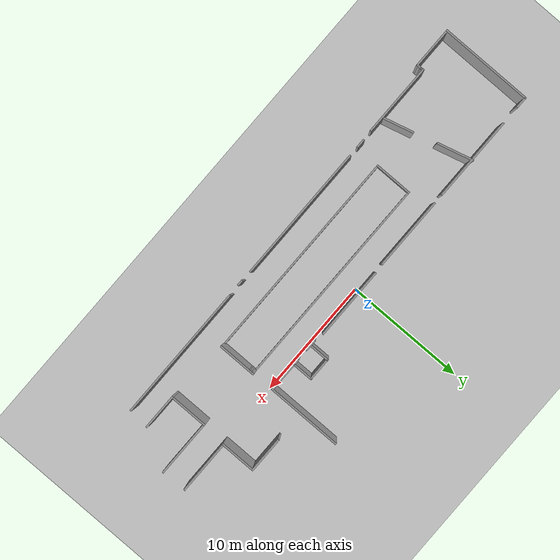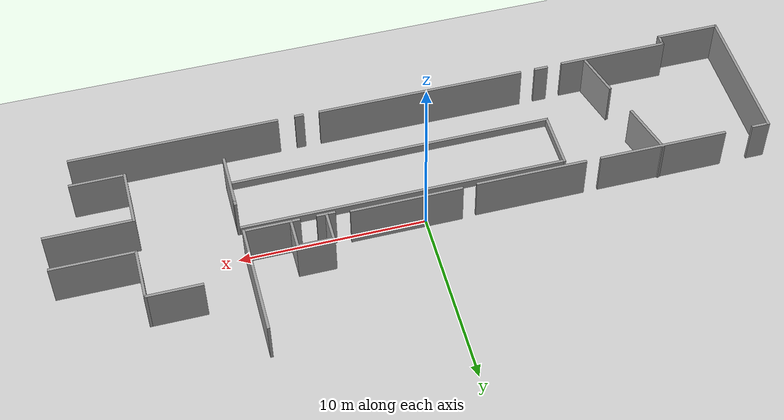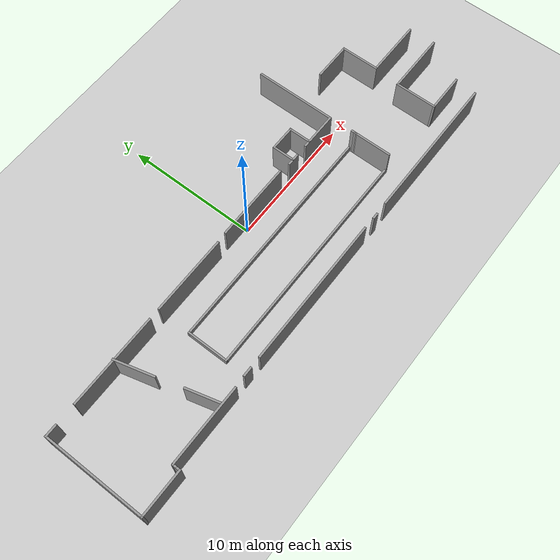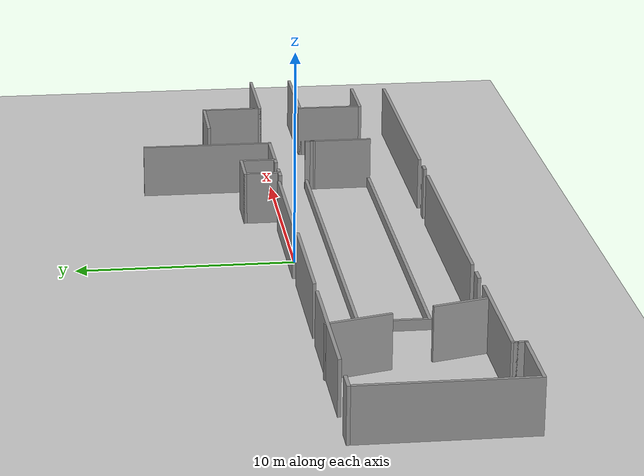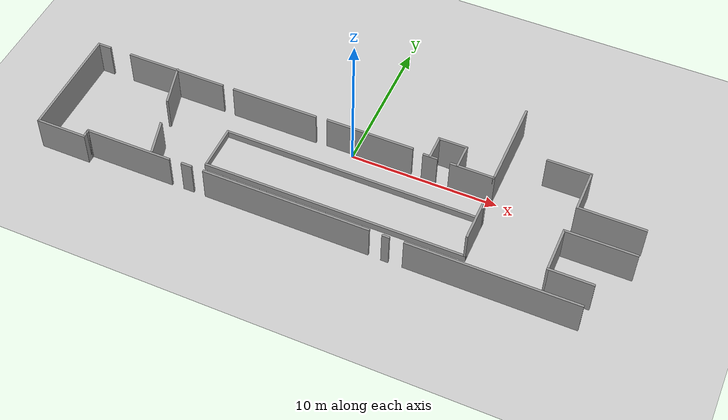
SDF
<sdf version="1.6">
 <world name="default">
  <light name="sun" type="directional">
   <pose>0 0 10 0 -0 0</pose>
   <diffuse>0.8 0.8 0.8 1</diffuse>
   <specular>0.2 0.2 0.2 1</specular>
   <attenuation>
    <range>1000</range>
    <constant>0.9</constant>
    <linear>0.01</linear>
    <quadratic>0.001</quadratic>
   </attenuation>
   <direction>-0.5 0.1 -0.9</direction>
  </light>
  <model name="ground_plane">
   <static>1</static>
   <link name="link">
    <collision name="collision">
     <geometry><plane><normal>0 0 1</normal><size>100 100</size></plane></geometry>
     <surface>
      <contact><collide_bitmask>65535</collide_bitmask></contact>
      <friction><ode><mu>100</mu><mu2>50</mu2></ode></friction>
     </surface>
    </collision>
    <visual name="visual">
     <cast_shadows>0</cast_shadows>
     <geometry><plane><normal>0 0 1</normal><size>100 100</size></plane></geometry>
     <material>
      <script><uri>file://media/materials/scripts/gazebo.material</uri><name>Gazebo/Grey</name></script>
     </material>
    </visual>
   </link>
  </model>
  <gravity>0 0 -9.8</gravity>
  <magnetic_field>6e-06 2.3e-05 -4.2e-05</magnetic_field>
  <atmosphere type="adiabatic"/>
  <physics name="default_physics" default="0" type="ode">
   <max_step_size>0.001</max_step_size>
   <real_time_factor>1</real_time_factor>
   <real_time_update_rate>1000</real_time_update_rate>
  </physics>
  <scene><ambient>0.4 0.4 0.4 1</ambient><background>0.7 0.7 0.7 1</background><shadows>1</shadows></scene>
  <audio><device>default</device></audio>
  <spherical_coordinates>
   <surface_model>EARTH_WGS84</surface_model>
   <latitude_deg>0</latitude_deg>
   <longitude_deg>0</longitude_deg>
   <elevation>0</elevation>
   <heading_deg>0</heading_deg>
  </spherical_coordinates>
  <model name="lispolis">
   <pose>0.278751 -0.605261 0 0 -0 0</pose>
   <link name="Wall_0">
    <collision name="Wall_0_Collision">
     <geometry><box><size>1 0.15 2.5</size></box></geometry>
     <pose>0 0 1.25 0 -0 0</pose>
    </collision>
    <visual name="Wall_0_Visual">
     <pose>0 0 1.25 0 -0 0</pose>
     <geometry><box><size>1 0.15 2.5</size></box></geometry>
     <material>
      <script><uri>file://media/materials/scripts/gazebo.material</uri><name>Gazebo/Grey</name></script>
      <ambient>1 1 1 1</ambient>
     </material>
     <meta><layer>0</layer></meta>
    </visual>
    <pose>-18.7091 0.795885 0 0 -0 3.14159</pose>
   </link>
   <link name="Wall_1">
    <collision name="Wall_1_Collision">
     <geometry><box><size>7.75 0.15 2.5</size></box></geometry>
     <pose>0 0 1.25 0 -0 0</pose>
    </collision>
    <visual name="Wall_1_Visual">
     <pose>0 0 1.25 0 -0 0</pose>
     <geometry><box><size>7.75 0.15 2.5</size></box></geometry>
     <material>
      <script><uri>file://media/materials/scripts/gazebo.material</uri><name>Gazebo/Grey</name></script>
      <ambient>1 1 1 1</ambient>
     </material>
     <meta><layer>0</layer></meta>
    </visual>
    <pose>-19.1341 -3.00412 0 0 -0 -1.5708</pose>
   </link>
   <link name="Wall_10">
    <collision name="Wall_10_Collision">
     <geometry><box><size>11.346 0.15 2.5</size></box></geometry>
     <pose>0 0 1.25 0 -0 0</pose>
    </collision>
    <visual name="Wall_10_Visual">
     <pose>0 0 1.25 0 -0 0</pose>
     <geometry><box><size>11.346 0.15 2.5</size></box></geometry>
     <material>
      <script><uri>file://media/materials/scripts/gazebo.material</uri><name>Gazebo/Grey</name></script>
      <ambient>1 1 1 1</ambient>
     </material>
     <meta><layer>0</layer></meta>
    </visual>
    <pose>-1.85715 -6.20928 0 0 -0 0</pose>
   </link>
   <link name="Wall_12">
    <collision name="Wall_12_Collision">
     <geometry><box><size>0.5 0.15 2.5</size></box></geometry>
     <pose>0 0 1.25 0 -0 0</pose>
    </collision>
    <visual name="Wall_12_Visual">
     <pose>0 0 1.25 0 -0 0</pose>
     <geometry><box><size>0.5 0.15 2.5</size></box></geometry>
     <material>
      <script><uri>file://media/materials/scripts/gazebo.material</uri><name>Gazebo/Grey</name></script>
      <ambient>1 1 1 1</ambient>
     </material>
     <meta><layer>0</layer></meta>
    </visual>
    <pose>4.89475 -6.23987 0 0 -0 0</pose>
   </link>
   <link name="Wall_14">
    <collision name="Wall_14_Collision">
     <geometry><box><size>11.25 0.15 2.5</size></box></geometry>
     <pose>0 0 1.25 0 -0 0</pose>
    </collision>
    <visual name="Wall_14_Visual">
     <pose>0 0 1.25 0 -0 0</pose>
     <geometry><box><size>11.25 0.15 2.5</size></box></geometry>
     <material>
      <script><uri>file://media/materials/scripts/gazebo.material</uri><name>Gazebo/Grey</name></script>
      <ambient>1 1 1 1</ambient>
     </material>
     <meta><layer>0</layer></meta>
    </visual>
    <pose>11.6769 -6.20928 0 0 -0 0</pose>
   </link>
   <link name="Wall_16">
    <collision name="Wall_16_Collision">
     <geometry><box><size>7 0.15 2.5</size></box></geometry>
     <pose>0 0 1.25 0 -0 0</pose>
    </collision>
    <visual name="Wall_16_Visual">
     <pose>0 0 1.25 0 -0 0</pose>
     <geometry><box><size>7 0.15 2.5</size></box></geometry>
     <material>
      <script><uri>file://media/materials/scripts/gazebo.material</uri><name>Gazebo/Grey</name></script>
      <ambient>1 1 1 1</ambient>
     </material>
     <meta><layer>0</layer></meta>
    </visual>
    <pose>-13.2072 0.795885 0 0 -0 0</pose>
   </link>
   <link name="Wall_18">
    <collision name="Wall_18_Collision">
     <geometry><box><size>6 0.15 2.5</size></box></geometry>
     <pose>0 0 1.25 0 -0 0</pose>
    </collision>
    <visual name="Wall_18_Visual">
     <pose>0 0 1.25 0 -0 0</pose>
     <geometry><box><size>6 0.15 2.5</size></box></geometry>
     <material>
      <script><uri>file://media/materials/scripts/gazebo.material</uri><name>Gazebo/Grey</name></script>
      <ambient>1 1 1 1</ambient>
     </material>
     <meta><layer>0</layer></meta>
    </visual>
    <pose>-5.93731 0.795885 0 0 -0 0</pose>
   </link>
   <link name="Wall_2">
    <collision name="Wall_2_Collision">
     <geometry><box><size>3.5 0.15 2.5</size></box></geometry>
     <pose>0 0 1.25 0 -0 0</pose>
    </collision>
    <visual name="Wall_2_Visual">
     <pose>0 0 1.25 0 -0 0</pose>
     <geometry><box><size>3.5 0.15 2.5</size></box></geometry>
     <material>
      <script><uri>file://media/materials/scripts/gazebo.material</uri><name>Gazebo/Grey</name></script>
      <ambient>1 1 1 1</ambient>
     </material>
     <meta><layer>0</layer></meta>
    </visual>
    <pose>-17.4591 -6.80412 0 0 -0 0</pose>
   </link>
   <link name="Wall_20">
    <collision name="Wall_20_Collision">
     <geometry><box><size>6 0.15 2.5</size></box></geometry>
     <pose>0 0 1.25 0 -0 0</pose>
    </collision>
    <visual name="Wall_20_Visual">
     <pose>0 0 1.25 0 -0 0</pose>
     <geometry><box><size>6 0.15 2.5</size></box></geometry>
     <material>
      <script><uri>file://media/materials/scripts/gazebo.material</uri><name>Gazebo/Grey</name></script>
      <ambient>1 1 1 1</ambient>
     </material>
     <meta><layer>0</layer></meta>
    </visual>
    <pose>0.792538 0.857066 0 0 -0 0</pose>
   </link>
   <link name="Wall_22">
    <collision name="Wall_22_Collision">
     <geometry><box><size>1 0.15 2.5</size></box></geometry>
     <pose>0 0 1.25 0 -0 0</pose>
    </collision>
    <visual name="Wall_22_Visual">
     <pose>0 0 1.25 0 -0 0</pose>
     <geometry><box><size>1 0.15 2.5</size></box></geometry>
     <material>
      <script><uri>file://media/materials/scripts/gazebo.material</uri><name>Gazebo/Grey</name></script>
      <ambient>1 1 1 1</ambient>
     </material>
     <meta><layer>0</layer></meta>
    </visual>
    <pose>5.02239 0.704115 0 0 -0 0</pose>
   </link>
   <link name="Wall_24">
    <collision name="Wall_24_Collision">
     <geometry><box><size>1.75 0.15 2.5</size></box></geometry>
     <pose>0 0 1.25 0 -0 0</pose>
    </collision>
    <visual name="Wall_24_Visual">
     <pose>0 0 1.25 0 -0 0</pose>
     <geometry><box><size>1.75 0.15 2.5</size></box></geometry>
     <material>
      <script><uri>file://media/materials/scripts/gazebo.material</uri><name>Gazebo/Grey</name></script>
      <ambient>1 1 1 1</ambient>
     </material>
     <meta><layer>0</layer></meta>
    </visual>
    <pose>4.99506 1.5347 0 0 -0 1.5708</pose>
   </link>
   <link name="Wall_25">
    <collision name="Wall_25_Collision">
     <geometry><box><size>2 0.15 2.5</size></box></geometry>
     <pose>0 0 1.25 0 -0 0</pose>
    </collision>
    <visual name="Wall_25_Visual">
     <pose>0 0 1.25 0 -0 0</pose>
     <geometry><box><size>2 0.15 2.5</size></box></geometry>
     <material>
      <script><uri>file://media/materials/scripts/gazebo.material</uri><name>Gazebo/Grey</name></script>
      <ambient>1 1 1 1</ambient>
     </material>
     <meta><layer>0</layer></meta>
    </visual>
    <pose>5.92006 2.33471 0 0 -0 0</pose>
   </link>
   <link name="Wall_26">
    <collision name="Wall_26_Collision">
     <geometry><box><size>1.75 0.15 2.5</size></box></geometry>
     <pose>0 0 1.25 0 -0 0</pose>
    </collision>
    <visual name="Wall_26_Visual">
     <pose>0 0 1.25 0 -0 0</pose>
     <geometry><box><size>1.75 0.15 2.5</size></box></geometry>
     <material>
      <script><uri>file://media/materials/scripts/gazebo.material</uri><name>Gazebo/Grey</name></script>
      <ambient>1 1 1 1</ambient>
     </material>
     <meta><layer>0</layer></meta>
    </visual>
    <pose>6.84506 1.5347 0 0 -0 -1.5708</pose>
   </link>
   <link name="Wall_28">
    <collision name="Wall_28_Collision">
     <geometry><box><size>3 0.15 2.5</size></box></geometry>
     <pose>0 0 1.25 0 -0 0</pose>
    </collision>
    <visual name="Wall_28_Visual">
     <pose>0 0 1.25 0 -0 0</pose>
     <geometry><box><size>3 0.15 2.5</size></box></geometry>
     <material>
      <script><uri>file://media/materials/scripts/gazebo.material</uri><name>Gazebo/Grey</name></script>
      <ambient>1 1 1 1</ambient>
     </material>
     <meta><layer>0</layer></meta>
    </visual>
    <pose>7.8578 0.704115 0 0 -0 0</pose>
   </link>
   <link name="Wall_29">
    <collision name="Wall_29_Collision">
     <geometry><box><size>6.25 0.15 2.5</size></box></geometry>
     <pose>0 0 1.25 0 -0 0</pose>
    </collision>
    <visual name="Wall_29_Visual">
     <pose>0 0 1.25 0 -0 0</pose>
     <geometry><box><size>6.25 0.15 2.5</size></box></geometry>
     <material>
      <script><uri>file://media/materials/scripts/gazebo.material</uri><name>Gazebo/Grey</name></script>
      <ambient>1 1 1 1</ambient>
     </material>
     <meta><layer>0</layer></meta>
    </visual>
    <pose>9.2828 3.75412 0 0 -0 1.5708</pose>
   </link>
   <link name="Wall_3">
    <collision name="Wall_3_Collision">
     <geometry><box><size>0.5 0.15 2.5</size></box></geometry>
     <pose>0 0 1.25 0 -0 0</pose>
    </collision>
    <visual name="Wall_3_Visual">
     <pose>0 0 1.25 0 -0 0</pose>
     <geometry><box><size>0.5 0.15 2.5</size></box></geometry>
     <material>
      <script><uri>file://media/materials/scripts/gazebo.material</uri><name>Gazebo/Grey</name></script>
      <ambient>1 1 1 1</ambient>
     </material>
     <meta><layer>0</layer></meta>
    </visual>
    <pose>-15.7841 -6.62911 0 0 -0 1.5708</pose>
   </link>
   <link name="Wall_31">
    <collision name="Wall_31_Collision">
     <geometry><box><size>3 0.15 2.5</size></box></geometry>
     <pose>0 0 1.25 0 -0 0</pose>
    </collision>
    <visual name="Wall_31_Visual">
     <pose>0 0 1.25 0 -0 0</pose>
     <geometry><box><size>3 0.15 2.5</size></box></geometry>
     <material>
      <script><uri>file://media/materials/scripts/gazebo.material</uri><name>Gazebo/Grey</name></script>
      <ambient>1 1 1 1</ambient>
     </material>
     <meta><layer>0</layer></meta>
    </visual>
    <pose>13.3029 3.45723 0 0 -0 0</pose>
   </link>
   <link name="Wall_32">
    <collision name="Wall_32_Collision">
     <geometry><box><size>3 0.15 2.5</size></box></geometry>
     <pose>0 0 1.25 0 -0 0</pose>
    </collision>
    <visual name="Wall_32_Visual">
     <pose>0 0 1.25 0 -0 0</pose>
     <geometry><box><size>3 0.15 2.5</size></box></geometry>
     <material>
      <script><uri>file://media/materials/scripts/gazebo.material</uri><name>Gazebo/Grey</name></script>
      <ambient>1 1 1 1</ambient>
     </material>
     <meta><layer>0</layer></meta>
    </visual>
    <pose>14.7279 2.03224 0 0 -0 -1.5708</pose>
   </link>
   <link name="Wall_33">
    <collision name="Wall_33_Collision">
     <geometry><box><size>4.5 0.15 2.5</size></box></geometry>
     <pose>0 0 1.25 0 -0 0</pose>
    </collision>
    <visual name="Wall_33_Visual">
     <pose>0 0 1.25 0 -0 0</pose>
     <geometry><box><size>4.5 0.15 2.5</size></box></geometry>
     <material>
      <script><uri>file://media/materials/scripts/gazebo.material</uri><name>Gazebo/Grey</name></script>
      <ambient>1 1 1 1</ambient>
     </material>
     <meta><layer>0</layer></meta>
    </visual>
    <pose>16.9029 0.607235 0 0 -0 0</pose>
   </link>
   <link name="Wall_35">
    <collision name="Wall_35_Collision">
     <geometry><box><size>3 0.15 2.5</size></box></geometry>
     <pose>0 0 1.25 0 -0 0</pose>
    </collision>
    <visual name="Wall_35_Visual">
     <pose>0 0 1.25 0 -0 0</pose>
     <geometry><box><size>3 0.15 2.5</size></box></geometry>
     <material>
      <script><uri>file://media/materials/scripts/gazebo.material</uri><name>Gazebo/Grey</name></script>
      <ambient>1 1 1 1</ambient>
     </material>
     <meta><layer>0</layer></meta>
    </visual>
    <pose>15.9591 -4.52682 0 0 -0 3.14159</pose>
   </link>
   <link name="Wall_36">
    <collision name="Wall_36_Collision">
     <geometry><box><size>3.25 0.15 2.5</size></box></geometry>
     <pose>0 0 1.25 0 -0 0</pose>
    </collision>
    <visual name="Wall_36_Visual">
     <pose>0 0 1.25 0 -0 0</pose>
     <geometry><box><size>3.25 0.15 2.5</size></box></geometry>
     <material>
      <script><uri>file://media/materials/scripts/gazebo.material</uri><name>Gazebo/Grey</name></script>
      <ambient>1 1 1 1</ambient>
     </material>
     <meta><layer>0</layer></meta>
    </visual>
    <pose>14.5341 -2.97682 0 0 -0 1.5708</pose>
   </link>
   <link name="Wall_37">
    <collision name="Wall_37_Collision">
     <geometry><box><size>4.75 0.15 2.5</size></box></geometry>
     <pose>0 0 1.25 0 -0 0</pose>
    </collision>
    <visual name="Wall_37_Visual">
     <pose>0 0 1.25 0 -0 0</pose>
     <geometry><box><size>4.75 0.15 2.5</size></box></geometry>
     <material>
      <script><uri>file://media/materials/scripts/gazebo.material</uri><name>Gazebo/Grey</name></script>
      <ambient>1 1 1 1</ambient>
     </material>
     <meta><layer>0</layer></meta>
    </visual>
    <pose>16.8341 -1.42681 0 0 -0 0</pose>
   </link>
   <link name="Wall_39">
    <collision name="Wall_39_Collision">
     <geometry><box><size>3.25 0.15 0.5</size></box></geometry>
     <pose>0 0 0.25 0 -0 0</pose>
    </collision>
    <visual name="Wall_39_Visual">
     <pose>0 0 0.25 0 -0 0</pose>
     <geometry><box><size>3.25 0.15 0.5</size></box></geometry>
     <material>
      <script><uri>file://media/materials/scripts/gazebo.material</uri><name>Gazebo/Grey</name></script>
      <ambient>1 1 1 1</ambient>
     </material>
     <meta><layer>0</layer></meta>
    </visual>
    <pose>-8.49475 -2.68174 0 0 -0 -1.5708</pose>
   </link>
   <link name="Wall_4">
    <collision name="Wall_4_Collision">
     <geometry><box><size>0.25 0.15 2.5</size></box></geometry>
     <pose>0 0 1.25 0 -0 0</pose>
    </collision>
    <visual name="Wall_4_Visual">
     <pose>0 0 1.25 0 -0 0</pose>
     <geometry><box><size>0.25 0.15 2.5</size></box></geometry>
     <material>
      <script><uri>file://media/materials/scripts/gazebo.material</uri><name>Gazebo/Grey</name></script>
      <ambient>1 1 1 1</ambient>
     </material>
     <meta><layer>0</layer></meta>
    </visual>
    <pose>-15.7841 -6.40412 0 0 -0 1.5708</pose>
   </link>
   <link name="Wall_40">
    <collision name="Wall_40_Collision">
     <geometry><box><size>18 0.15 0.5</size></box></geometry>
     <pose>0 0 0.25 0 -0 0</pose>
    </collision>
    <visual name="Wall_40_Visual">
     <pose>0 0 0.25 0 -0 0</pose>
     <geometry><box><size>18 0.15 0.5</size></box></geometry>
     <material>
      <script><uri>file://media/materials/scripts/gazebo.material</uri><name>Gazebo/Grey</name></script>
      <ambient>1 1 1 1</ambient>
     </material>
     <meta><layer>0</layer></meta>
    </visual>
    <pose>0.430249 -4.23174 0 0 -0 0</pose>
   </link>
   <link name="Wall_41">
    <collision name="Wall_41_Collision">
     <geometry><box><size>3 0.15 2.5</size></box></geometry>
     <pose>0 0 1.25 0 -0 0</pose>
    </collision>
    <visual name="Wall_41_Visual">
     <pose>0 0 1.25 0 -0 0</pose>
     <geometry><box><size>3 0.15 2.5</size></box></geometry>
     <material>
      <script><uri>file://media/materials/scripts/gazebo.material</uri><name>Gazebo/Grey</name></script>
      <ambient>1 1 1 1</ambient>
     </material>
     <meta><layer>0</layer></meta>
    </visual>
    <pose>9.35501 -2.80652 0 0 -0 1.57096</pose>
   </link>
   <link name="Wall_43">
    <collision name="Wall_43_Collision">
     <geometry><box><size>18 0.15 0.5</size></box></geometry>
     <pose>0 0 0.25 0 -0 0</pose>
    </collision>
    <visual name="Wall_43_Visual">
     <pose>0 0 0.25 0 -0 0</pose>
     <geometry><box><size>18 0.15 0.5</size></box></geometry>
     <material>
      <script><uri>file://media/materials/scripts/gazebo.material</uri><name>Gazebo/Grey</name></script>
      <ambient>1 1 1 1</ambient>
     </material>
     <meta><layer>0</layer></meta>
    </visual>
    <pose>0.430249 -1.13174 0 0 -0 0</pose>
   </link>
   <link name="Wall_44">
    <collision name="Wall_44_Collision">
     <geometry><box><size>0.5 0.15 2.5</size></box></geometry>
     <pose>0 0 1.25 0 -0 0</pose>
    </collision>
    <visual name="Wall_44_Visual">
     <pose>0 0 1.25 0 -0 0</pose>
     <geometry><box><size>0.5 0.15 2.5</size></box></geometry>
     <material>
      <script><uri>file://media/materials/scripts/gazebo.material</uri><name>Gazebo/Grey</name></script>
      <ambient>1 1 1 1</ambient>
     </material>
     <meta><layer>0</layer></meta>
    </visual>
    <pose>9.35501 -1.30652 0 0 -0 -1.57217</pose>
   </link>
   <link name="Wall_46">
    <collision name="Wall_46_Collision">
     <geometry><box><size>3 0.15 2.5</size></box></geometry>
     <pose>0 0 1.25 0 -0 0</pose>
    </collision>
    <visual name="Wall_46_Visual">
     <pose>0 0 1.25 0 -0 0</pose>
     <geometry><box><size>3 0.15 2.5</size></box></geometry>
     <material>
      <script><uri>file://media/materials/scripts/gazebo.material</uri><name>Gazebo/Grey</name></script>
      <ambient>1 1 1 1</ambient>
     </material>
     <meta><layer>0</layer></meta>
    </visual>
    <pose>-12.7761 -0.519379 0 0 -0 -1.309</pose>
   </link>
   <link name="Wall_48">
    <collision name="Wall_48_Collision">
     <geometry><box><size>2.5 0.15 2.5</size></box></geometry>
     <pose>0 0 1.25 0 -0 0</pose>
    </collision>
    <visual name="Wall_48_Visual">
     <pose>0 0 1.25 0 -0 0</pose>
     <geometry><box><size>2.5 0.15 2.5</size></box></geometry>
     <material>
      <script><uri>file://media/materials/scripts/gazebo.material</uri><name>Gazebo/Grey</name></script>
      <ambient>1 1 1 1</ambient>
     </material>
     <meta><layer>0</layer></meta>
    </visual>
    <pose>-11.5255 -4.9582 0 0 -0 -1.309</pose>
   </link>
   <link name="Wall_5">
    <collision name="Wall_5_Collision">
     <geometry><box><size>0.25 0.15 2.5</size></box></geometry>
     <pose>0 0 1.25 0 -0 0</pose>
    </collision>
    <visual name="Wall_5_Visual">
     <pose>0 0 1.25 0 -0 0</pose>
     <geometry><box><size>0.25 0.15 2.5</size></box></geometry>
     <material>
      <script><uri>file://media/materials/scripts/gazebo.material</uri><name>Gazebo/Grey</name></script>
      <ambient>1 1 1 1</ambient>
     </material>
     <meta><layer>0</layer></meta>
    </visual>
    <pose>-15.7841 -6.30412 0 0 -0 1.5708</pose>
   </link>
   <link name="Wall_6">
    <collision name="Wall_6_Collision">
     <geometry><box><size>6 0.15 2.5</size></box></geometry>
     <pose>0 0 1.25 0 -0 0</pose>
    </collision>
    <visual name="Wall_6_Visual">
     <pose>0 0 1.25 0 -0 0</pose>
     <geometry><box><size>6 0.15 2.5</size></box></geometry>
     <material>
      <script><uri>file://media/materials/scripts/gazebo.material</uri><name>Gazebo/Grey</name></script>
      <ambient>1 1 1 1</ambient>
     </material>
     <meta><layer>0</layer></meta>
    </visual>
    <pose>-12.8591 -6.25411 0 0 -0 0</pose>
   </link>
   <link name="Wall_8">
    <collision name="Wall_8_Collision">
     <geometry><box><size>0.75 0.15 2.5</size></box></geometry>
     <pose>0 0 1.25 0 -0 0</pose>
    </collision>
    <visual name="Wall_8_Visual">
     <pose>0 0 1.25 0 -0 0</pose>
     <geometry><box><size>0.75 0.15 2.5</size></box></geometry>
     <material>
      <script><uri>file://media/materials/scripts/gazebo.material</uri><name>Gazebo/Grey</name></script>
      <ambient>1 1 1 1</ambient>
     </material>
     <meta><layer>0</layer></meta>
    </visual>
    <pose>-8.68467 -6.20928 0 0 -0 0</pose>
   </link>
   <static>1</static>
  </model>
  <plugin name="ros_interface_plugin" filename="librotors_gazebo_ros_interface_plugin.so"/>
 </world>
</sdf>
